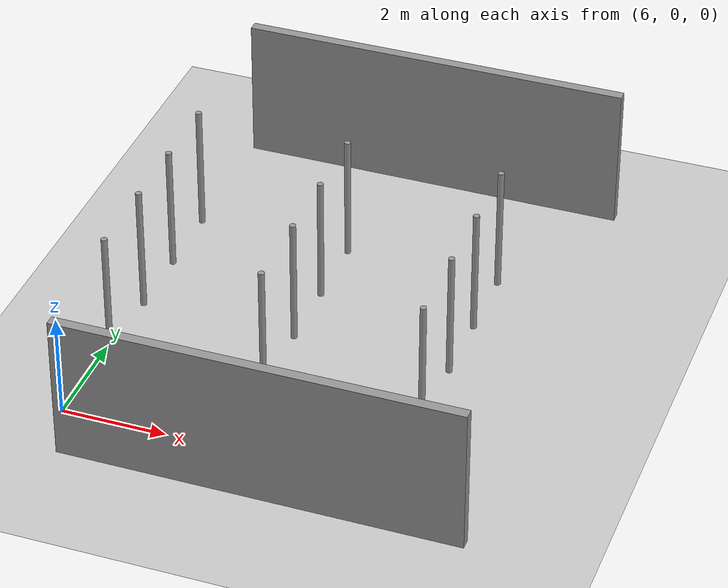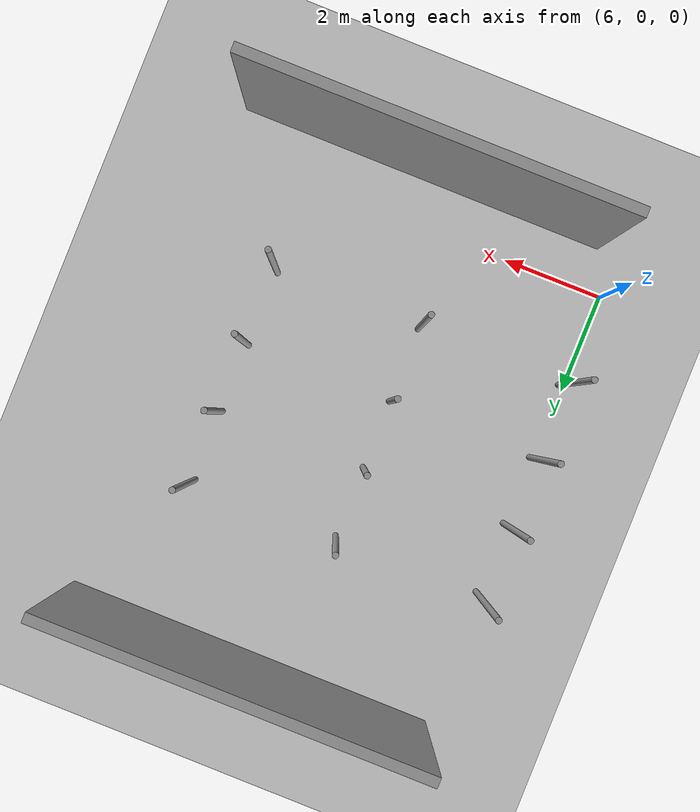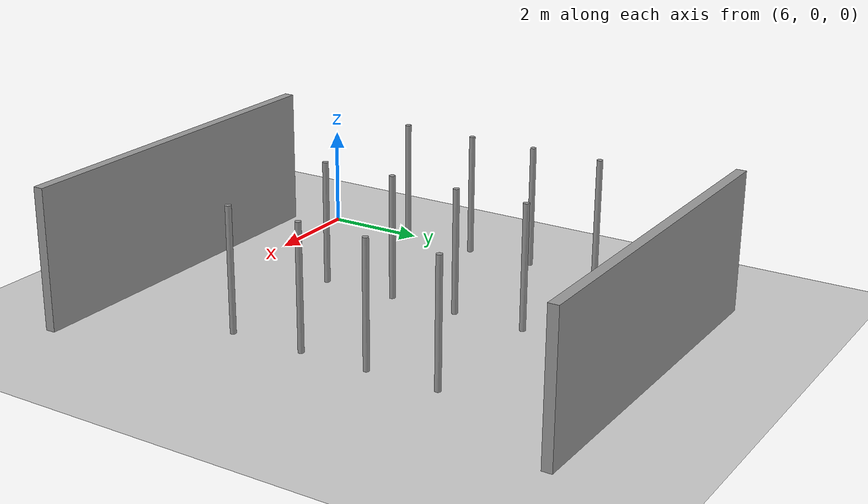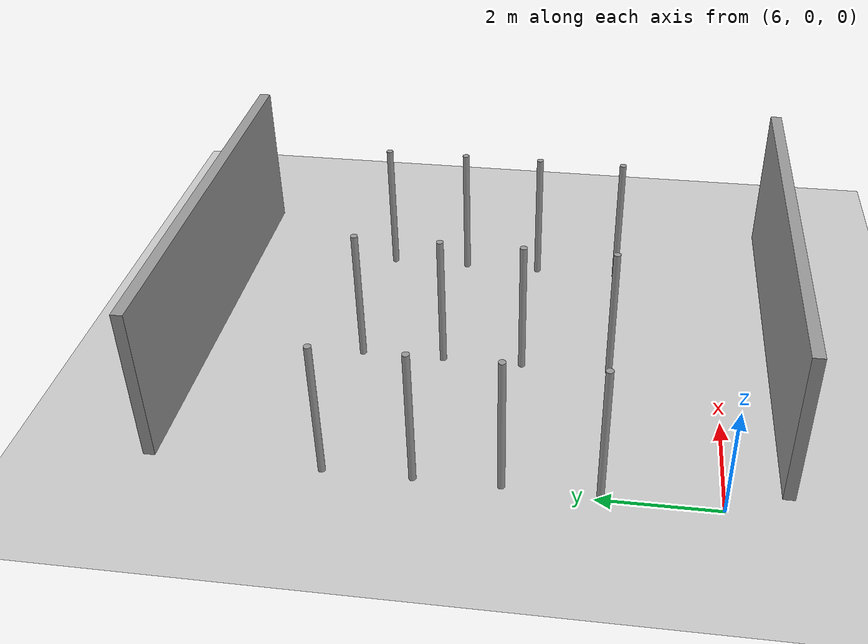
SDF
<sdf version="1.6">
 <world name="default">
  <model name="ground_plane">
   <static>1</static>
   <link name="link">
    <collision name="collision">
     <geometry><plane><normal>0 0 1</normal><size>100 100</size></plane></geometry>
     <surface><friction><ode><mu>100</mu><mu2>50</mu2></ode></friction></surface>
    </collision>
    <visual name="visual">
     <cast_shadows>0</cast_shadows>
     <geometry><plane><normal>0 0 1</normal><size>100 100</size></plane></geometry>
     <material>
      <script><uri>file://media/materials/scripts/gazebo.material</uri><name>Gazebo/Grey</name></script>
     </material>
    </visual>
   </link>
  </model>
  <model name="pole">
   <link name="link_0">
    <inertial>
     <mass>0.0364582</mass>
     <inertia>
      <ixx>0.00312124</ixx>
      <ixy>0</ixy>
      <ixz>0</ixz>
      <iyy>0.00312124</iyy>
      <iyz>0</iyz>
      <izz>0.00016615</izz>
     </inertia>
    </inertial>
    <visual name="visual">
     <geometry><cylinder><radius>0.06</radius><length>2.5</length></cylinder></geometry>
     <material>
      <lighting>1</lighting>
      <script><uri>file://media/materials/scripts/gazebo.material</uri><name>Gazebo/Grey</name></script>
      <ambient>0.3 0.3 0.3 1</ambient>
      <diffuse>0.7 0.7 0.7 1</diffuse>
      <specular>0.01 0.01 0.01 1</specular>
      <emissive>0 0 0 1</emissive>
      <shader type="vertex"><normal_map>__default__</normal_map></shader>
     </material>
    </visual>
    <collision name="collision">
     <geometry><cylinder><radius>0.06</radius><length>2.5</length></cylinder></geometry>
     <surface>
      <friction>
       <ode><mu>1</mu><mu2>1</mu2><fdir1>0 0 0</fdir1><slip1>0</slip1><slip2>0</slip2></ode>
       <torsional>
        <coefficient>1</coefficient>
        <patch_radius>0</patch_radius>
        <surface_radius>0</surface_radius>
        <use_patch_radius>1</use_patch_radius>
        <ode><slip>0</slip></ode>
       </torsional>
      </friction>
      <bounce><restitution_coefficient>0</restitution_coefficient><threshold>1e+06</threshold></bounce>
      <contact>
       <collide_without_contact>0</collide_without_contact>
       <collide_without_contact_bitmask>1</collide_without_contact_bitmask>
       <collide_bitmask>1</collide_bitmask>
       <ode>
        <soft_cfm>0</soft_cfm>
        <soft_erp>0.2</soft_erp>
        <kp>1e+13</kp>
        <kd>1</kd>
        <max_vel>0.01</max_vel>
        <min_depth>0</min_depth>
       </ode>
       <bullet>
        <split_impulse>1</split_impulse>
        <split_impulse_penetration_threshold>-0.01</split_impulse_penetration_threshold>
        <soft_cfm>0</soft_cfm>
        <soft_erp>0.2</soft_erp>
        <kp>1e+13</kp>
        <kd>1</kd>
       </bullet>
      </contact>
     </surface>
    </collision>
   </link>
   <static>0</static>
   <pose>6.10674 1.89995 1.24999 0 2e-06 -0.06554</pose>
  </model>
  <model name="pole_0">
   <link name="link_0">
    <inertial>
     <mass>0.0364582</mass>
     <inertia>
      <ixx>0.00312124</ixx>
      <ixy>0</ixy>
      <ixz>0</ixz>
      <iyy>0.00312124</iyy>
      <iyz>0</iyz>
      <izz>0.00016615</izz>
     </inertia>
    </inertial>
    <visual name="visual">
     <geometry><cylinder><radius>0.06</radius><length>2.5</length></cylinder></geometry>
     <material>
      <lighting>1</lighting>
      <script><uri>file://media/materials/scripts/gazebo.material</uri><name>Gazebo/Grey</name></script>
      <ambient>0.3 0.3 0.3 1</ambient>
      <diffuse>0.7 0.7 0.7 1</diffuse>
      <specular>0.01 0.01 0.01 1</specular>
      <emissive>0 0 0 1</emissive>
      <shader type="vertex"><normal_map>__default__</normal_map></shader>
     </material>
    </visual>
    <collision name="collision">
     <geometry><cylinder><radius>0.06</radius><length>2.5</length></cylinder></geometry>
     <surface>
      <friction>
       <ode><mu>1</mu><mu2>1</mu2><fdir1>0 0 0</fdir1><slip1>0</slip1><slip2>0</slip2></ode>
       <torsional>
        <coefficient>1</coefficient>
        <patch_radius>0</patch_radius>
        <surface_radius>0</surface_radius>
        <use_patch_radius>1</use_patch_radius>
        <ode><slip>0</slip></ode>
       </torsional>
      </friction>
      <bounce><restitution_coefficient>0</restitution_coefficient><threshold>1e+06</threshold></bounce>
      <contact>
       <collide_without_contact>0</collide_without_contact>
       <collide_without_contact_bitmask>1</collide_without_contact_bitmask>
       <collide_bitmask>1</collide_bitmask>
       <ode>
        <soft_cfm>0</soft_cfm>
        <soft_erp>0.2</soft_erp>
        <kp>1e+13</kp>
        <kd>1</kd>
        <max_vel>0.01</max_vel>
        <min_depth>0</min_depth>
       </ode>
       <bullet>
        <split_impulse>1</split_impulse>
        <split_impulse_penetration_threshold>-0.01</split_impulse_penetration_threshold>
        <soft_cfm>0</soft_cfm>
        <soft_erp>0.2</soft_erp>
        <kp>1e+13</kp>
        <kd>1</kd>
       </bullet>
      </contact>
     </surface>
    </collision>
   </link>
   <static>0</static>
   <pose>6.10674 3.44598 1.24999 0 -1e-06 -0.036597</pose>
  </model>
  <model name="pole_1">
   <link name="link_0">
    <inertial>
     <mass>0.0364582</mass>
     <inertia>
      <ixx>0.00312124</ixx>
      <ixy>0</ixy>
      <ixz>0</ixz>
      <iyy>0.00312124</iyy>
      <iyz>0</iyz>
      <izz>0.00016615</izz>
     </inertia>
    </inertial>
    <visual name="visual">
     <geometry><cylinder><radius>0.06</radius><length>2.5</length></cylinder></geometry>
     <material>
      <lighting>1</lighting>
      <script><uri>file://media/materials/scripts/gazebo.material</uri><name>Gazebo/Grey</name></script>
      <ambient>0.3 0.3 0.3 1</ambient>
      <diffuse>0.7 0.7 0.7 1</diffuse>
      <specular>0.01 0.01 0.01 1</specular>
      <emissive>0 0 0 1</emissive>
      <shader type="vertex"><normal_map>__default__</normal_map></shader>
     </material>
    </visual>
    <collision name="collision">
     <geometry><cylinder><radius>0.06</radius><length>2.5</length></cylinder></geometry>
     <surface>
      <friction>
       <ode><mu>1</mu><mu2>1</mu2><fdir1>0 0 0</fdir1><slip1>0</slip1><slip2>0</slip2></ode>
       <torsional>
        <coefficient>1</coefficient>
        <patch_radius>0</patch_radius>
        <surface_radius>0</surface_radius>
        <use_patch_radius>1</use_patch_radius>
        <ode><slip>0</slip></ode>
       </torsional>
      </friction>
      <bounce><restitution_coefficient>0</restitution_coefficient><threshold>1e+06</threshold></bounce>
      <contact>
       <collide_without_contact>0</collide_without_contact>
       <collide_without_contact_bitmask>1</collide_without_contact_bitmask>
       <collide_bitmask>1</collide_bitmask>
       <ode>
        <soft_cfm>0</soft_cfm>
        <soft_erp>0.2</soft_erp>
        <kp>1e+13</kp>
        <kd>1</kd>
        <max_vel>0.01</max_vel>
        <min_depth>0</min_depth>
       </ode>
       <bullet>
        <split_impulse>1</split_impulse>
        <split_impulse_penetration_threshold>-0.01</split_impulse_penetration_threshold>
        <soft_cfm>0</soft_cfm>
        <soft_erp>0.2</soft_erp>
        <kp>1e+13</kp>
        <kd>1</kd>
       </bullet>
      </contact>
     </surface>
    </collision>
   </link>
   <static>0</static>
   <pose>6.10677 4.85492 1.25 -1e-06 1e-06 -0.038798</pose>
  </model>
  <model name="pole_2">
   <link name="link_0">
    <inertial>
     <mass>0.0364582</mass>
     <inertia>
      <ixx>0.00312124</ixx>
      <ixy>0</ixy>
      <ixz>0</ixz>
      <iyy>0.00312124</iyy>
      <iyz>0</iyz>
      <izz>0.00016615</izz>
     </inertia>
    </inertial>
    <visual name="visual">
     <geometry><cylinder><radius>0.06</radius><length>2.5</length></cylinder></geometry>
     <material>
      <lighting>1</lighting>
      <script><uri>file://media/materials/scripts/gazebo.material</uri><name>Gazebo/Grey</name></script>
      <ambient>0.3 0.3 0.3 1</ambient>
      <diffuse>0.7 0.7 0.7 1</diffuse>
      <specular>0.01 0.01 0.01 1</specular>
      <emissive>0 0 0 1</emissive>
      <shader type="vertex"><normal_map>__default__</normal_map></shader>
     </material>
    </visual>
    <collision name="collision">
     <geometry><cylinder><radius>0.06</radius><length>2.5</length></cylinder></geometry>
     <surface>
      <friction>
       <ode><mu>1</mu><mu2>1</mu2><fdir1>0 0 0</fdir1><slip1>0</slip1><slip2>0</slip2></ode>
       <torsional>
        <coefficient>1</coefficient>
        <patch_radius>0</patch_radius>
        <surface_radius>0</surface_radius>
        <use_patch_radius>1</use_patch_radius>
        <ode><slip>0</slip></ode>
       </torsional>
      </friction>
      <bounce><restitution_coefficient>0</restitution_coefficient><threshold>1e+06</threshold></bounce>
      <contact>
       <collide_without_contact>0</collide_without_contact>
       <collide_without_contact_bitmask>1</collide_without_contact_bitmask>
       <collide_bitmask>1</collide_bitmask>
       <ode>
        <soft_cfm>0</soft_cfm>
        <soft_erp>0.2</soft_erp>
        <kp>1e+13</kp>
        <kd>1</kd>
        <max_vel>0.01</max_vel>
        <min_depth>0</min_depth>
       </ode>
       <bullet>
        <split_impulse>1</split_impulse>
        <split_impulse_penetration_threshold>-0.01</split_impulse_penetration_threshold>
        <soft_cfm>0</soft_cfm>
        <soft_erp>0.2</soft_erp>
        <kp>1e+13</kp>
        <kd>1</kd>
       </bullet>
      </contact>
     </surface>
    </collision>
   </link>
   <static>0</static>
   <pose>6.10641 6.31787 1.25 0 0 -0.04608</pose>
  </model>
  <model name="pole_3">
   <link name="link_0">
    <inertial>
     <mass>0.0364582</mass>
     <inertia>
      <ixx>0.00312124</ixx>
      <ixy>0</ixy>
      <ixz>0</ixz>
      <iyy>0.00312124</iyy>
      <iyz>0</iyz>
      <izz>0.00016615</izz>
     </inertia>
    </inertial>
    <visual name="visual">
     <geometry><cylinder><radius>0.06</radius><length>2.5</length></cylinder></geometry>
     <material>
      <lighting>1</lighting>
      <script><uri>file://media/materials/scripts/gazebo.material</uri><name>Gazebo/Grey</name></script>
      <ambient>0.3 0.3 0.3 1</ambient>
      <diffuse>0.7 0.7 0.7 1</diffuse>
      <specular>0.01 0.01 0.01 1</specular>
      <emissive>0 0 0 1</emissive>
      <shader type="vertex"><normal_map>__default__</normal_map></shader>
     </material>
    </visual>
    <collision name="collision">
     <geometry><cylinder><radius>0.06</radius><length>2.5</length></cylinder></geometry>
     <surface>
      <friction>
       <ode><mu>1</mu><mu2>1</mu2><fdir1>0 0 0</fdir1><slip1>0</slip1><slip2>0</slip2></ode>
       <torsional>
        <coefficient>1</coefficient>
        <patch_radius>0</patch_radius>
        <surface_radius>0</surface_radius>
        <use_patch_radius>1</use_patch_radius>
        <ode><slip>0</slip></ode>
       </torsional>
      </friction>
      <bounce><restitution_coefficient>0</restitution_coefficient><threshold>1e+06</threshold></bounce>
      <contact>
       <collide_without_contact>0</collide_without_contact>
       <collide_without_contact_bitmask>1</collide_without_contact_bitmask>
       <collide_bitmask>1</collide_bitmask>
       <ode>
        <soft_cfm>0</soft_cfm>
        <soft_erp>0.2</soft_erp>
        <kp>1e+13</kp>
        <kd>1</kd>
        <max_vel>0.01</max_vel>
        <min_depth>0</min_depth>
       </ode>
       <bullet>
        <split_impulse>1</split_impulse>
        <split_impulse_penetration_threshold>-0.01</split_impulse_penetration_threshold>
        <soft_cfm>0</soft_cfm>
        <soft_erp>0.2</soft_erp>
        <kp>1e+13</kp>
        <kd>1</kd>
       </bullet>
      </contact>
     </surface>
    </collision>
   </link>
   <static>0</static>
   <pose>12.1068 1.8999 1.24999 0 -1e-06 -0.039725</pose>
  </model>
  <model name="pole_4">
   <link name="link_0">
    <inertial>
     <mass>0.0364582</mass>
     <inertia>
      <ixx>0.00312124</ixx>
      <ixy>0</ixy>
      <ixz>0</ixz>
      <iyy>0.00312124</iyy>
      <iyz>0</iyz>
      <izz>0.00016615</izz>
     </inertia>
    </inertial>
    <visual name="visual">
     <geometry><cylinder><radius>0.06</radius><length>2.5</length></cylinder></geometry>
     <material>
      <lighting>1</lighting>
      <script><uri>file://media/materials/scripts/gazebo.material</uri><name>Gazebo/Grey</name></script>
      <ambient>0.3 0.3 0.3 1</ambient>
      <diffuse>0.7 0.7 0.7 1</diffuse>
      <specular>0.01 0.01 0.01 1</specular>
      <emissive>0 0 0 1</emissive>
      <shader type="vertex"><normal_map>__default__</normal_map></shader>
     </material>
    </visual>
    <collision name="collision">
     <geometry><cylinder><radius>0.06</radius><length>2.5</length></cylinder></geometry>
     <surface>
      <friction>
       <ode><mu>1</mu><mu2>1</mu2><fdir1>0 0 0</fdir1><slip1>0</slip1><slip2>0</slip2></ode>
       <torsional>
        <coefficient>1</coefficient>
        <patch_radius>0</patch_radius>
        <surface_radius>0</surface_radius>
        <use_patch_radius>1</use_patch_radius>
        <ode><slip>0</slip></ode>
       </torsional>
      </friction>
      <bounce><restitution_coefficient>0</restitution_coefficient><threshold>1e+06</threshold></bounce>
      <contact>
       <collide_without_contact>0</collide_without_contact>
       <collide_without_contact_bitmask>1</collide_without_contact_bitmask>
       <collide_bitmask>1</collide_bitmask>
       <ode>
        <soft_cfm>0</soft_cfm>
        <soft_erp>0.2</soft_erp>
        <kp>1e+13</kp>
        <kd>1</kd>
        <max_vel>0.01</max_vel>
        <min_depth>0</min_depth>
       </ode>
       <bullet>
        <split_impulse>1</split_impulse>
        <split_impulse_penetration_threshold>-0.01</split_impulse_penetration_threshold>
        <soft_cfm>0</soft_cfm>
        <soft_erp>0.2</soft_erp>
        <kp>1e+13</kp>
        <kd>1</kd>
       </bullet>
      </contact>
     </surface>
    </collision>
   </link>
   <static>0</static>
   <pose>9.10675 3.44605 1.24999 0 1e-06 -0.036686</pose>
  </model>
  <model name="pole_5">
   <link name="link_0">
    <inertial>
     <mass>0.0364582</mass>
     <inertia>
      <ixx>0.00312124</ixx>
      <ixy>0</ixy>
      <ixz>0</ixz>
      <iyy>0.00312124</iyy>
      <iyz>0</iyz>
      <izz>0.00016615</izz>
     </inertia>
    </inertial>
    <visual name="visual">
     <geometry><cylinder><radius>0.06</radius><length>2.5</length></cylinder></geometry>
     <material>
      <lighting>1</lighting>
      <script><uri>file://media/materials/scripts/gazebo.material</uri><name>Gazebo/Grey</name></script>
      <ambient>0.3 0.3 0.3 1</ambient>
      <diffuse>0.7 0.7 0.7 1</diffuse>
      <specular>0.01 0.01 0.01 1</specular>
      <emissive>0 0 0 1</emissive>
      <shader type="vertex"><normal_map>__default__</normal_map></shader>
     </material>
    </visual>
    <collision name="collision">
     <geometry><cylinder><radius>0.06</radius><length>2.5</length></cylinder></geometry>
     <surface>
      <friction>
       <ode><mu>1</mu><mu2>1</mu2><fdir1>0 0 0</fdir1><slip1>0</slip1><slip2>0</slip2></ode>
       <torsional>
        <coefficient>1</coefficient>
        <patch_radius>0</patch_radius>
        <surface_radius>0</surface_radius>
        <use_patch_radius>1</use_patch_radius>
        <ode><slip>0</slip></ode>
       </torsional>
      </friction>
      <bounce><restitution_coefficient>0</restitution_coefficient><threshold>1e+06</threshold></bounce>
      <contact>
       <collide_without_contact>0</collide_without_contact>
       <collide_without_contact_bitmask>1</collide_without_contact_bitmask>
       <collide_bitmask>1</collide_bitmask>
       <ode>
        <soft_cfm>0</soft_cfm>
        <soft_erp>0.2</soft_erp>
        <kp>1e+13</kp>
        <kd>1</kd>
        <max_vel>0.01</max_vel>
        <min_depth>0</min_depth>
       </ode>
       <bullet>
        <split_impulse>1</split_impulse>
        <split_impulse_penetration_threshold>-0.01</split_impulse_penetration_threshold>
        <soft_cfm>0</soft_cfm>
        <soft_erp>0.2</soft_erp>
        <kp>1e+13</kp>
        <kd>1</kd>
       </bullet>
      </contact>
     </surface>
    </collision>
   </link>
   <static>0</static>
   <pose>9.1068 4.8551 1.24999 0 1e-06 -0.036112</pose>
  </model>
  <model name="pole_6">
   <link name="link_0">
    <inertial>
     <mass>0.0364582</mass>
     <inertia>
      <ixx>0.00312124</ixx>
      <ixy>0</ixy>
      <ixz>0</ixz>
      <iyy>0.00312124</iyy>
      <iyz>0</iyz>
      <izz>0.00016615</izz>
     </inertia>
    </inertial>
    <visual name="visual">
     <geometry><cylinder><radius>0.06</radius><length>2.5</length></cylinder></geometry>
     <material>
      <lighting>1</lighting>
      <script><uri>file://media/materials/scripts/gazebo.material</uri><name>Gazebo/Grey</name></script>
      <ambient>0.3 0.3 0.3 1</ambient>
      <diffuse>0.7 0.7 0.7 1</diffuse>
      <specular>0.01 0.01 0.01 1</specular>
      <emissive>0 0 0 1</emissive>
      <shader type="vertex"><normal_map>__default__</normal_map></shader>
     </material>
    </visual>
    <collision name="collision">
     <geometry><cylinder><radius>0.06</radius><length>2.5</length></cylinder></geometry>
     <surface>
      <friction>
       <ode><mu>1</mu><mu2>1</mu2><fdir1>0 0 0</fdir1><slip1>0</slip1><slip2>0</slip2></ode>
       <torsional>
        <coefficient>1</coefficient>
        <patch_radius>0</patch_radius>
        <surface_radius>0</surface_radius>
        <use_patch_radius>1</use_patch_radius>
        <ode><slip>0</slip></ode>
       </torsional>
      </friction>
      <bounce><restitution_coefficient>0</restitution_coefficient><threshold>1e+06</threshold></bounce>
      <contact>
       <collide_without_contact>0</collide_without_contact>
       <collide_without_contact_bitmask>1</collide_without_contact_bitmask>
       <collide_bitmask>1</collide_bitmask>
       <ode>
        <soft_cfm>0</soft_cfm>
        <soft_erp>0.2</soft_erp>
        <kp>1e+13</kp>
        <kd>1</kd>
        <max_vel>0.01</max_vel>
        <min_depth>0</min_depth>
       </ode>
       <bullet>
        <split_impulse>1</split_impulse>
        <split_impulse_penetration_threshold>-0.01</split_impulse_penetration_threshold>
        <soft_cfm>0</soft_cfm>
        <soft_erp>0.2</soft_erp>
        <kp>1e+13</kp>
        <kd>1</kd>
       </bullet>
      </contact>
     </surface>
    </collision>
   </link>
   <static>0</static>
   <pose>9.10676 6.31799 1.25 0 -4e-06 -0.05878</pose>
  </model>
  <model name="pole_7">
   <link name="link_0">
    <inertial>
     <mass>0.0364582</mass>
     <inertia>
      <ixx>0.00312124</ixx>
      <ixy>0</ixy>
      <ixz>0</ixz>
      <iyy>0.00312124</iyy>
      <iyz>0</iyz>
      <izz>0.00016615</izz>
     </inertia>
    </inertial>
    <visual name="visual">
     <geometry><cylinder><radius>0.06</radius><length>2.5</length></cylinder></geometry>
     <material>
      <lighting>1</lighting>
      <script><uri>file://media/materials/scripts/gazebo.material</uri><name>Gazebo/Grey</name></script>
      <ambient>0.3 0.3 0.3 1</ambient>
      <diffuse>0.7 0.7 0.7 1</diffuse>
      <specular>0.01 0.01 0.01 1</specular>
      <emissive>0 0 0 1</emissive>
      <shader type="vertex"><normal_map>__default__</normal_map></shader>
     </material>
    </visual>
    <collision name="collision">
     <geometry><cylinder><radius>0.06</radius><length>2.5</length></cylinder></geometry>
     <surface>
      <friction>
       <ode><mu>1</mu><mu2>1</mu2><fdir1>0 0 0</fdir1><slip1>0</slip1><slip2>0</slip2></ode>
       <torsional>
        <coefficient>1</coefficient>
        <patch_radius>0</patch_radius>
        <surface_radius>0</surface_radius>
        <use_patch_radius>1</use_patch_radius>
        <ode><slip>0</slip></ode>
       </torsional>
      </friction>
      <bounce><restitution_coefficient>0</restitution_coefficient><threshold>1e+06</threshold></bounce>
      <contact>
       <collide_without_contact>0</collide_without_contact>
       <collide_without_contact_bitmask>1</collide_without_contact_bitmask>
       <collide_bitmask>1</collide_bitmask>
       <ode>
        <soft_cfm>0</soft_cfm>
        <soft_erp>0.2</soft_erp>
        <kp>1e+13</kp>
        <kd>1</kd>
        <max_vel>0.01</max_vel>
        <min_depth>0</min_depth>
       </ode>
       <bullet>
        <split_impulse>1</split_impulse>
        <split_impulse_penetration_threshold>-0.01</split_impulse_penetration_threshold>
        <soft_cfm>0</soft_cfm>
        <soft_erp>0.2</soft_erp>
        <kp>1e+13</kp>
        <kd>1</kd>
       </bullet>
      </contact>
     </surface>
    </collision>
   </link>
   <static>0</static>
   <pose>9.10673 1.90006 1.24999 -1e-06 1e-06 -0.030195</pose>
  </model>
  <model name="pole_8">
   <link name="link_0">
    <inertial>
     <mass>0.0364582</mass>
     <inertia>
      <ixx>0.00312124</ixx>
      <ixy>0</ixy>
      <ixz>0</ixz>
      <iyy>0.00312124</iyy>
      <iyz>0</iyz>
      <izz>0.00016615</izz>
     </inertia>
    </inertial>
    <visual name="visual">
     <geometry><cylinder><radius>0.06</radius><length>2.5</length></cylinder></geometry>
     <material>
      <lighting>1</lighting>
      <script><uri>file://media/materials/scripts/gazebo.material</uri><name>Gazebo/Grey</name></script>
      <ambient>0.3 0.3 0.3 1</ambient>
      <diffuse>0.7 0.7 0.7 1</diffuse>
      <specular>0.01 0.01 0.01 1</specular>
      <emissive>0 0 0 1</emissive>
      <shader type="vertex"><normal_map>__default__</normal_map></shader>
     </material>
    </visual>
    <collision name="collision">
     <geometry><cylinder><radius>0.06</radius><length>2.5</length></cylinder></geometry>
     <surface>
      <friction>
       <ode><mu>1</mu><mu2>1</mu2><fdir1>0 0 0</fdir1><slip1>0</slip1><slip2>0</slip2></ode>
       <torsional>
        <coefficient>1</coefficient>
        <patch_radius>0</patch_radius>
        <surface_radius>0</surface_radius>
        <use_patch_radius>1</use_patch_radius>
        <ode><slip>0</slip></ode>
       </torsional>
      </friction>
      <bounce><restitution_coefficient>0</restitution_coefficient><threshold>1e+06</threshold></bounce>
      <contact>
       <collide_without_contact>0</collide_without_contact>
       <collide_without_contact_bitmask>1</collide_without_contact_bitmask>
       <collide_bitmask>1</collide_bitmask>
       <ode>
        <soft_cfm>0</soft_cfm>
        <soft_erp>0.2</soft_erp>
        <kp>1e+13</kp>
        <kd>1</kd>
        <max_vel>0.01</max_vel>
        <min_depth>0</min_depth>
       </ode>
       <bullet>
        <split_impulse>1</split_impulse>
        <split_impulse_penetration_threshold>-0.01</split_impulse_penetration_threshold>
        <soft_cfm>0</soft_cfm>
        <soft_erp>0.2</soft_erp>
        <kp>1e+13</kp>
        <kd>1</kd>
       </bullet>
      </contact>
     </surface>
    </collision>
   </link>
   <static>0</static>
   <pose>12.1069 3.44605 1.24999 0 2e-06 -0.033875</pose>
  </model>
  <model name="pole_9">
   <link name="link_0">
    <inertial>
     <mass>0.0364582</mass>
     <inertia>
      <ixx>0.00312124</ixx>
      <ixy>0</ixy>
      <ixz>0</ixz>
      <iyy>0.00312124</iyy>
      <iyz>0</iyz>
      <izz>0.00016615</izz>
     </inertia>
    </inertial>
    <visual name="visual">
     <geometry><cylinder><radius>0.06</radius><length>2.5</length></cylinder></geometry>
     <material>
      <lighting>1</lighting>
      <script><uri>file://media/materials/scripts/gazebo.material</uri><name>Gazebo/Grey</name></script>
      <ambient>0.3 0.3 0.3 1</ambient>
      <diffuse>0.7 0.7 0.7 1</diffuse>
      <specular>0.01 0.01 0.01 1</specular>
      <emissive>0 0 0 1</emissive>
      <shader type="vertex"><normal_map>__default__</normal_map></shader>
     </material>
    </visual>
    <collision name="collision">
     <geometry><cylinder><radius>0.06</radius><length>2.5</length></cylinder></geometry>
     <surface>
      <friction>
       <ode><mu>1</mu><mu2>1</mu2><fdir1>0 0 0</fdir1><slip1>0</slip1><slip2>0</slip2></ode>
       <torsional>
        <coefficient>1</coefficient>
        <patch_radius>0</patch_radius>
        <surface_radius>0</surface_radius>
        <use_patch_radius>1</use_patch_radius>
        <ode><slip>0</slip></ode>
       </torsional>
      </friction>
      <bounce><restitution_coefficient>0</restitution_coefficient><threshold>1e+06</threshold></bounce>
      <contact>
       <collide_without_contact>0</collide_without_contact>
       <collide_without_contact_bitmask>1</collide_without_contact_bitmask>
       <collide_bitmask>1</collide_bitmask>
       <ode>
        <soft_cfm>0</soft_cfm>
        <soft_erp>0.2</soft_erp>
        <kp>1e+13</kp>
        <kd>1</kd>
        <max_vel>0.01</max_vel>
        <min_depth>0</min_depth>
       </ode>
       <bullet>
        <split_impulse>1</split_impulse>
        <split_impulse_penetration_threshold>-0.01</split_impulse_penetration_threshold>
        <soft_cfm>0</soft_cfm>
        <soft_erp>0.2</soft_erp>
        <kp>1e+13</kp>
        <kd>1</kd>
       </bullet>
      </contact>
     </surface>
    </collision>
   </link>
   <static>0</static>
   <pose>12.1068 4.85496 1.24999 -1e-06 -2e-06 -0.035841</pose>
  </model>
  <model name="pole_10">
   <link name="link_0">
    <inertial>
     <mass>0.0364582</mass>
     <inertia>
      <ixx>0.00312124</ixx>
      <ixy>0</ixy>
      <ixz>0</ixz>
      <iyy>0.00312124</iyy>
      <iyz>0</iyz>
      <izz>0.00016615</izz>
     </inertia>
    </inertial>
    <visual name="visual">
     <geometry><cylinder><radius>0.06</radius><length>2.5</length></cylinder></geometry>
     <material>
      <lighting>1</lighting>
      <script><uri>file://media/materials/scripts/gazebo.material</uri><name>Gazebo/Grey</name></script>
      <ambient>0.3 0.3 0.3 1</ambient>
      <diffuse>0.7 0.7 0.7 1</diffuse>
      <specular>0.01 0.01 0.01 1</specular>
      <emissive>0 0 0 1</emissive>
      <shader type="vertex"><normal_map>__default__</normal_map></shader>
     </material>
    </visual>
    <collision name="collision">
     <geometry><cylinder><radius>0.06</radius><length>2.5</length></cylinder></geometry>
     <surface>
      <friction>
       <ode><mu>1</mu><mu2>1</mu2><fdir1>0 0 0</fdir1><slip1>0</slip1><slip2>0</slip2></ode>
       <torsional>
        <coefficient>1</coefficient>
        <patch_radius>0</patch_radius>
        <surface_radius>0</surface_radius>
        <use_patch_radius>1</use_patch_radius>
        <ode><slip>0</slip></ode>
       </torsional>
      </friction>
      <bounce><restitution_coefficient>0</restitution_coefficient><threshold>1e+06</threshold></bounce>
      <contact>
       <collide_without_contact>0</collide_without_contact>
       <collide_without_contact_bitmask>1</collide_without_contact_bitmask>
       <collide_bitmask>1</collide_bitmask>
       <ode>
        <soft_cfm>0</soft_cfm>
        <soft_erp>0.2</soft_erp>
        <kp>1e+13</kp>
        <kd>1</kd>
        <max_vel>0.01</max_vel>
        <min_depth>0</min_depth>
       </ode>
       <bullet>
        <split_impulse>1</split_impulse>
        <split_impulse_penetration_threshold>-0.01</split_impulse_penetration_threshold>
        <soft_cfm>0</soft_cfm>
        <soft_erp>0.2</soft_erp>
        <kp>1e+13</kp>
        <kd>1</kd>
       </bullet>
      </contact>
     </surface>
    </collision>
   </link>
   <static>0</static>
   <pose>12.1068 6.31789 1.24999 -1e-06 1e-06 -0.034747</pose>
  </model>
  <model name="grey_wall">
   <static>1</static>
   <link name="link">
    <pose>0 0 1.4 0 -0 0</pose>
    <collision name="collision"><geometry><box><size>7.5 0.2 2.8</size></box></geometry></collision>
    <visual name="visual">
     <cast_shadows>0</cast_shadows>
     <geometry><box><size>7.5 0.2 2.8</size></box></geometry>
     <material>
      <script>
       <uri>model://grey_wall/materials/scripts</uri>
       <uri>model://grey_wall/materials/textures</uri>
       <name>vrc/grey_wall</name>
      </script>
     </material>
    </visual>
   </link>
   <pose>9.84399 9.17396 0 0 -0 0</pose>
  </model>
  <model name="grey_wall_clone_1">
   <static>1</static>
   <link name="link">
    <pose>0 0 1.4 0 -0 0</pose>
    <collision name="collision"><geometry><box><size>7.5 0.2 2.8</size></box></geometry></collision>
    <visual name="visual">
     <cast_shadows>0</cast_shadows>
     <geometry><box><size>7.5 0.2 2.8</size></box></geometry>
     <material>
      <script>
       <uri>model://grey_wall/materials/scripts</uri>
       <uri>model://grey_wall/materials/textures</uri>
       <name>vrc/grey_wall</name>
      </script>
     </material>
    </visual>
   </link>
   <pose>10.1321 -0.990005 0 0 -0 0</pose>
  </model>
 </world>
</sdf>
